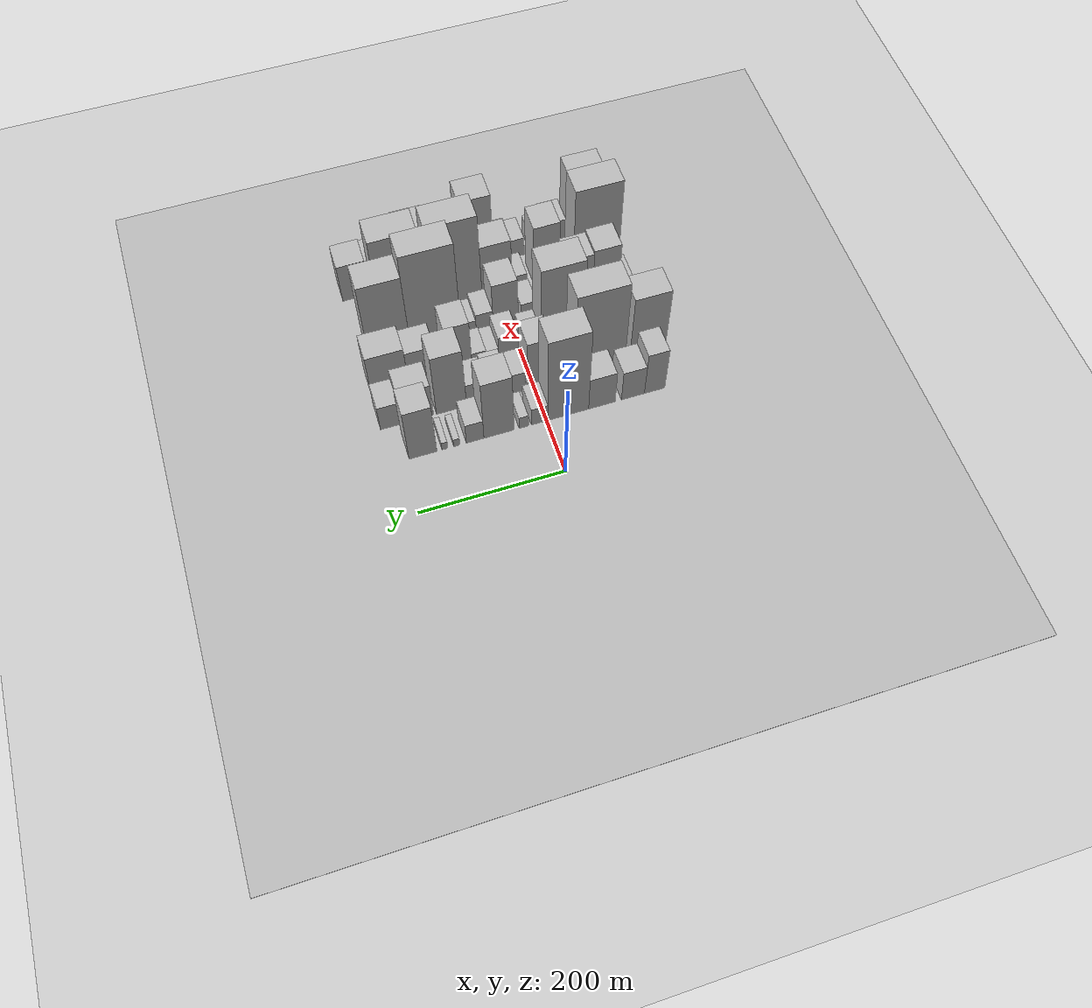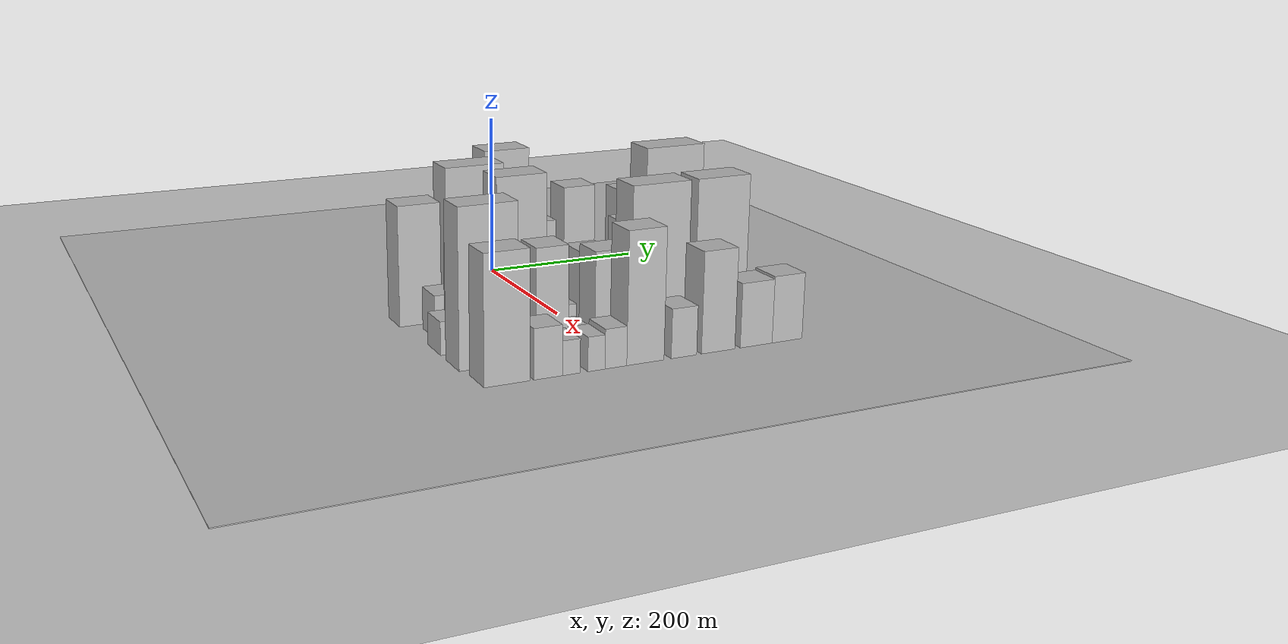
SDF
<sdf version="1.6">
 <world name="default">
  <include><name>ground_plane_1</name><uri>model://HANNAS_ground_plane</uri></include>
  <include>
   <name>ground_plane_2</name>
   <uri>model://HANNAS_ground_plane</uri>
   <pose>100 0 0  0 0 0</pose>
  </include>
  <model name="building_19">
   <static>1</static>
   <pose>100.0000 -153.6469 0 0.000000 0.000000 0.000000</pose>
   <link name="link">
    <pose>0 0 46.50 0 0 0</pose>
    <collision name="collision"><geometry><box><size>40.0000 29.4439 93.0000</size></box></geometry></collision>
    <visual name="visual">
     <cast_shadows>0</cast_shadows>
     <geometry><box><size>40.0000 29.4439 93.0000</size></box></geometry>
     <material>
      <script>
       <uri>model://HANNAS_wall/materials/scripts</uri>
       <uri>model://HANNAS_wall/materials/textures</uri>
       <name>vrc/HANNAS_wall</name>
      </script>
     </material>
    </visual>
   </link>
  </model>
  <model name="building_20">
   <static>1</static>
   <pose>100.0000 -122.4052 0 0.000000 0.000000 0.000000</pose>
   <link name="link">
    <pose>0 0 33.00 0 0 0</pose>
    <collision name="collision"><geometry><box><size>40.0000 33.0395 66.0000</size></box></geometry></collision>
    <visual name="visual">
     <cast_shadows>0</cast_shadows>
     <geometry><box><size>40.0000 33.0395 66.0000</size></box></geometry>
     <material>
      <script>
       <uri>model://HANNAS_wall/materials/scripts</uri>
       <uri>model://HANNAS_wall/materials/textures</uri>
       <name>vrc/HANNAS_wall</name>
      </script>
     </material>
    </visual>
   </link>
  </model>
  <model name="building_21">
   <static>1</static>
   <pose>100.0000 -77.9015 0 0.000000 0.000000 0.000000</pose>
   <link name="link">
    <pose>0 0 36.00 0 0 0</pose>
    <collision name="collision"><geometry><box><size>40.0000 37.9678 72.0000</size></box></geometry></collision>
    <visual name="visual">
     <cast_shadows>0</cast_shadows>
     <geometry><box><size>40.0000 37.9678 72.0000</size></box></geometry>
     <material>
      <script>
       <uri>model://HANNAS_wall/materials/scripts</uri>
       <uri>model://HANNAS_wall/materials/textures</uri>
       <name>vrc/HANNAS_wall</name>
      </script>
     </material>
    </visual>
   </link>
  </model>
  <model name="building_22">
   <static>1</static>
   <pose>100.0000 -30.0973 0 0.000000 0.000000 0.000000</pose>
   <link name="link">
    <pose>0 0 93.00 0 0 0</pose>
    <collision name="collision"><geometry><box><size>40.0000 57.6407 186.0000</size></box></geometry></collision>
    <visual name="visual">
     <cast_shadows>0</cast_shadows>
     <geometry><box><size>40.0000 57.6407 186.0000</size></box></geometry>
     <material>
      <script>
       <uri>model://HANNAS_wall/materials/scripts</uri>
       <uri>model://HANNAS_wall/materials/textures</uri>
       <name>vrc/HANNAS_wall</name>
      </script>
     </material>
    </visual>
   </link>
  </model>
  <model name="building_23">
   <static>1</static>
   <pose>100.0000 10.3468 0 0.000000 0.000000 0.000000</pose>
   <link name="link">
    <pose>0 0 19.50 0 0 0</pose>
    <collision name="collision"><geometry><box><size>40.0000 23.2474 39.0000</size></box></geometry></collision>
    <visual name="visual">
     <cast_shadows>0</cast_shadows>
     <geometry><box><size>40.0000 23.2474 39.0000</size></box></geometry>
     <material>
      <script>
       <uri>model://HANNAS_wall/materials/scripts</uri>
       <uri>model://HANNAS_wall/materials/textures</uri>
       <name>vrc/HANNAS_wall</name>
      </script>
     </material>
    </visual>
   </link>
  </model>
  <model name="building_24">
   <static>1</static>
   <pose>100.0000 32.5815 0 0.000000 0.000000 0.000000</pose>
   <link name="link">
    <pose>0 0 13.50 0 0 0</pose>
    <collision name="collision"><geometry><box><size>40.0000 13.2220 27.0000</size></box></geometry></collision>
    <visual name="visual">
     <cast_shadows>0</cast_shadows>
     <geometry><box><size>40.0000 13.2220 27.0000</size></box></geometry>
     <material>
      <script>
       <uri>model://HANNAS_wall/materials/scripts</uri>
       <uri>model://HANNAS_wall/materials/textures</uri>
       <name>vrc/HANNAS_wall</name>
      </script>
     </material>
    </visual>
   </link>
  </model>
  <model name="building_25">
   <static>1</static>
   <pose>100.0000 67.2017 0 0.000000 0.000000 0.000000</pose>
   <link name="link">
    <pose>0 0 66.00 0 0 0</pose>
    <collision name="collision"><geometry><box><size>40.0000 42.0183 132.0000</size></box></geometry></collision>
    <visual name="visual">
     <cast_shadows>0</cast_shadows>
     <geometry><box><size>40.0000 42.0183 132.0000</size></box></geometry>
     <material>
      <script>
       <uri>model://HANNAS_wall/materials/scripts</uri>
       <uri>model://HANNAS_wall/materials/textures</uri>
       <name>vrc/HANNAS_wall</name>
      </script>
     </material>
    </visual>
   </link>
  </model>
  <model name="building_26">
   <static>1</static>
   <pose>100.0000 100.3961 0 0.000000 0.000000 0.000000</pose>
   <link name="link">
    <pose>0 0 22.50 0 0 0</pose>
    <collision name="collision"><geometry><box><size>40.0000 24.3704 45.0000</size></box></geometry></collision>
    <visual name="visual">
     <cast_shadows>0</cast_shadows>
     <geometry><box><size>40.0000 24.3704 45.0000</size></box></geometry>
     <material>
      <script>
       <uri>model://HANNAS_wall/materials/scripts</uri>
       <uri>model://HANNAS_wall/materials/textures</uri>
       <name>vrc/HANNAS_wall</name>
      </script>
     </material>
    </visual>
   </link>
  </model>
  <model name="building_27">
   <static>1</static>
   <pose>100.0000 125.8456 0 0.000000 0.000000 0.000000</pose>
   <link name="link">
    <pose>0 0 9.00 0 0 0</pose>
    <collision name="collision"><geometry><box><size>40.0000 8.5287 18.0000</size></box></geometry></collision>
    <visual name="visual">
     <cast_shadows>0</cast_shadows>
     <geometry><box><size>40.0000 8.5287 18.0000</size></box></geometry>
     <material>
      <script>
       <uri>model://HANNAS_wall/materials/scripts</uri>
       <uri>model://HANNAS_wall/materials/textures</uri>
       <name>vrc/HANNAS_wall</name>
      </script>
     </material>
    </visual>
   </link>
  </model>
  <model name="building_28">
   <static>1</static>
   <pose>100.0000 142.0890 0 0.000000 0.000000 0.000000</pose>
   <link name="link">
    <pose>0 0 9.00 0 0 0</pose>
    <collision name="collision"><geometry><box><size>40.0000 7.9579 18.0000</size></box></geometry></collision>
    <visual name="visual">
     <cast_shadows>0</cast_shadows>
     <geometry><box><size>40.0000 7.9579 18.0000</size></box></geometry>
     <material>
      <script>
       <uri>model://HANNAS_wall/materials/scripts</uri>
       <uri>model://HANNAS_wall/materials/textures</uri>
       <name>vrc/HANNAS_wall</name>
      </script>
     </material>
    </visual>
   </link>
  </model>
  <model name="building_29">
   <static>1</static>
   <pose>100.0000 172.0794 0 0.000000 0.000000 0.000000</pose>
   <link name="link">
    <pose>0 0 57.00 0 0 0</pose>
    <collision name="collision"><geometry><box><size>40.0000 38.0229 114.0000</size></box></geometry></collision>
    <visual name="visual">
     <cast_shadows>0</cast_shadows>
     <geometry><box><size>40.0000 38.0229 114.0000</size></box></geometry>
     <material>
      <script>
       <uri>model://HANNAS_wall/materials/scripts</uri>
       <uri>model://HANNAS_wall/materials/textures</uri>
       <name>vrc/HANNAS_wall</name>
      </script>
     </material>
    </visual>
   </link>
  </model>
  <model name="building_71">
   <static>1</static>
   <pose>155.0000 -162.9015 0 0.000000 0.000000 0.000000</pose>
   <link name="link">
    <pose>0 0 72.00 0 0 0</pose>
    <collision name="collision"><geometry><box><size>40.0000 51.5961 144.0000</size></box></geometry></collision>
    <visual name="visual">
     <cast_shadows>0</cast_shadows>
     <geometry><box><size>40.0000 51.5961 144.0000</size></box></geometry>
     <material>
      <script>
       <uri>model://HANNAS_wall/materials/scripts</uri>
       <uri>model://HANNAS_wall/materials/textures</uri>
       <name>vrc/HANNAS_wall</name>
      </script>
     </material>
    </visual>
   </link>
  </model>
  <model name="building_72">
   <static>1</static>
   <pose>155.0000 -93.9543 0 0.000000 0.000000 0.000000</pose>
   <link name="link">
    <pose>0 0 91.50 0 0 0</pose>
    <collision name="collision"><geometry><box><size>40.0000 72.2982 183.0000</size></box></geometry></collision>
    <visual name="visual">
     <cast_shadows>0</cast_shadows>
     <geometry><box><size>40.0000 72.2982 183.0000</size></box></geometry>
     <material>
      <script>
       <uri>model://HANNAS_wall/materials/scripts</uri>
       <uri>model://HANNAS_wall/materials/textures</uri>
       <name>vrc/HANNAS_wall</name>
      </script>
     </material>
    </visual>
   </link>
  </model>
  <model name="building_73">
   <static>1</static>
   <pose>155.0000 -41.0346 0 0.000000 0.000000 0.000000</pose>
   <link name="link">
    <pose>0 0 33.00 0 0 0</pose>
    <collision name="collision"><geometry><box><size>40.0000 33.5412 66.0000</size></box></geometry></collision>
    <visual name="visual">
     <cast_shadows>0</cast_shadows>
     <geometry><box><size>40.0000 33.5412 66.0000</size></box></geometry>
     <material>
      <script>
       <uri>model://HANNAS_wall/materials/scripts</uri>
       <uri>model://HANNAS_wall/materials/textures</uri>
       <name>vrc/HANNAS_wall</name>
      </script>
     </material>
    </visual>
   </link>
  </model>
  <model name="building_74">
   <static>1</static>
   <pose>155.0000 -7.5074 0 0.000000 0.000000 0.000000</pose>
   <link name="link">
    <pose>0 0 54.00 0 0 0</pose>
    <collision name="collision"><geometry><box><size>40.0000 33.5132 108.0000</size></box></geometry></collision>
    <visual name="visual">
     <cast_shadows>0</cast_shadows>
     <geometry><box><size>40.0000 33.5132 108.0000</size></box></geometry>
     <material>
      <script>
       <uri>model://HANNAS_wall/materials/scripts</uri>
       <uri>model://HANNAS_wall/materials/textures</uri>
       <name>vrc/HANNAS_wall</name>
      </script>
     </material>
    </visual>
   </link>
  </model>
  <model name="building_75">
   <static>1</static>
   <pose>155.0000 25.5011 0 0.000000 0.000000 0.000000</pose>
   <link name="link">
    <pose>0 0 22.50 0 0 0</pose>
    <collision name="collision"><geometry><box><size>40.0000 26.5037 45.0000</size></box></geometry></collision>
    <visual name="visual">
     <cast_shadows>0</cast_shadows>
     <geometry><box><size>40.0000 26.5037 45.0000</size></box></geometry>
     <material>
      <script>
       <uri>model://HANNAS_wall/materials/scripts</uri>
       <uri>model://HANNAS_wall/materials/textures</uri>
       <name>vrc/HANNAS_wall</name>
      </script>
     </material>
    </visual>
   </link>
  </model>
  <model name="building_76">
   <static>1</static>
   <pose>155.0000 53.0796 0 0.000000 0.000000 0.000000</pose>
   <link name="link">
    <pose>0 0 28.50 0 0 0</pose>
    <collision name="collision"><geometry><box><size>40.0000 28.6533 57.0000</size></box></geometry></collision>
    <visual name="visual">
     <cast_shadows>0</cast_shadows>
     <geometry><box><size>40.0000 28.6533 57.0000</size></box></geometry>
     <material>
      <script>
       <uri>model://HANNAS_wall/materials/scripts</uri>
       <uri>model://HANNAS_wall/materials/textures</uri>
       <name>vrc/HANNAS_wall</name>
      </script>
     </material>
    </visual>
   </link>
  </model>
  <model name="building_77">
   <static>1</static>
   <pose>155.0000 81.7268 0 0.000000 0.000000 0.000000</pose>
   <link name="link">
    <pose>0 0 25.50 0 0 0</pose>
    <collision name="collision"><geometry><box><size>40.0000 28.6413 51.0000</size></box></geometry></collision>
    <visual name="visual">
     <cast_shadows>0</cast_shadows>
     <geometry><box><size>40.0000 28.6413 51.0000</size></box></geometry>
     <material>
      <script>
       <uri>model://HANNAS_wall/materials/scripts</uri>
       <uri>model://HANNAS_wall/materials/textures</uri>
       <name>vrc/HANNAS_wall</name>
      </script>
     </material>
    </visual>
   </link>
  </model>
  <model name="building_78">
   <static>1</static>
   <pose>155.0000 117.2070 0 0.000000 0.000000 0.000000</pose>
   <link name="link">
    <pose>0 0 67.50 0 0 0</pose>
    <collision name="collision"><geometry><box><size>40.0000 42.3190 135.0000</size></box></geometry></collision>
    <visual name="visual">
     <cast_shadows>0</cast_shadows>
     <geometry><box><size>40.0000 42.3190 135.0000</size></box></geometry>
     <material>
      <script>
       <uri>model://HANNAS_wall/materials/scripts</uri>
       <uri>model://HANNAS_wall/materials/textures</uri>
       <name>vrc/HANNAS_wall</name>
      </script>
     </material>
    </visual>
   </link>
  </model>
  <model name="building_79">
   <static>1</static>
   <pose>155.0000 164.8329 0 0.000000 0.000000 0.000000</pose>
   <link name="link">
    <pose>0 0 37.50 0 0 0</pose>
    <collision name="collision"><geometry><box><size>40.0000 44.9328 75.0000</size></box></geometry></collision>
    <visual name="visual">
     <cast_shadows>0</cast_shadows>
     <geometry><box><size>40.0000 44.9328 75.0000</size></box></geometry>
     <material>
      <script>
       <uri>model://HANNAS_wall/materials/scripts</uri>
       <uri>model://HANNAS_wall/materials/textures</uri>
       <name>vrc/HANNAS_wall</name>
      </script>
     </material>
    </visual>
   </link>
  </model>
  <model name="building_80">
   <static>1</static>
   <pose>155.0000 201.5827 0 0.000000 0.000000 0.000000</pose>
   <link name="link">
    <pose>0 0 27.00 0 0 0</pose>
    <collision name="collision"><geometry><box><size>40.0000 28.5667 54.0000</size></box></geometry></collision>
    <visual name="visual">
     <cast_shadows>0</cast_shadows>
     <geometry><box><size>40.0000 28.5667 54.0000</size></box></geometry>
     <material>
      <script>
       <uri>model://HANNAS_wall/materials/scripts</uri>
       <uri>model://HANNAS_wall/materials/textures</uri>
       <name>vrc/HANNAS_wall</name>
      </script>
     </material>
    </visual>
   </link>
  </model>
  <model name="building_123">
   <static>1</static>
   <pose>210.0000 -152.7098 0 0.000000 0.000000 0.000000</pose>
   <link name="link">
    <pose>0 0 25.50 0 0 0</pose>
    <collision name="collision"><geometry><box><size>40.0000 26.4671 51.0000</size></box></geometry></collision>
    <visual name="visual">
     <cast_shadows>0</cast_shadows>
     <geometry><box><size>40.0000 26.4671 51.0000</size></box></geometry>
     <material>
      <script>
       <uri>model://HANNAS_wall/materials/scripts</uri>
       <uri>model://HANNAS_wall/materials/textures</uri>
       <name>vrc/HANNAS_wall</name>
      </script>
     </material>
    </visual>
   </link>
  </model>
  <model name="building_124">
   <static>1</static>
   <pose>210.0000 -114.6695 0 0.000000 0.000000 0.000000</pose>
   <link name="link">
    <pose>0 0 43.50 0 0 0</pose>
    <collision name="collision"><geometry><box><size>40.0000 49.6135 87.0000</size></box></geometry></collision>
    <visual name="visual">
     <cast_shadows>0</cast_shadows>
     <geometry><box><size>40.0000 49.6135 87.0000</size></box></geometry>
     <material>
      <script>
       <uri>model://HANNAS_wall/materials/scripts</uri>
       <uri>model://HANNAS_wall/materials/textures</uri>
       <name>vrc/HANNAS_wall</name>
      </script>
     </material>
    </visual>
   </link>
  </model>
  <model name="building_125">
   <static>1</static>
   <pose>210.0000 -58.7451 0 0.000000 0.000000 0.000000</pose>
   <link name="link">
    <pose>0 0 90.00 0 0 0</pose>
    <collision name="collision"><geometry><box><size>40.0000 62.2352 180.0000</size></box></geometry></collision>
    <visual name="visual">
     <cast_shadows>0</cast_shadows>
     <geometry><box><size>40.0000 62.2352 180.0000</size></box></geometry>
     <material>
      <script>
       <uri>model://HANNAS_wall/materials/scripts</uri>
       <uri>model://HANNAS_wall/materials/textures</uri>
       <name>vrc/HANNAS_wall</name>
      </script>
     </material>
    </visual>
   </link>
  </model>
  <model name="building_126">
   <static>1</static>
   <pose>210.0000 -14.6817 0 0.000000 0.000000 0.000000</pose>
   <link name="link">
    <pose>0 0 22.50 0 0 0</pose>
    <collision name="collision"><geometry><box><size>40.0000 25.8915 45.0000</size></box></geometry></collision>
    <visual name="visual">
     <cast_shadows>0</cast_shadows>
     <geometry><box><size>40.0000 25.8915 45.0000</size></box></geometry>
     <material>
      <script>
       <uri>model://HANNAS_wall/materials/scripts</uri>
       <uri>model://HANNAS_wall/materials/textures</uri>
       <name>vrc/HANNAS_wall</name>
      </script>
     </material>
    </visual>
   </link>
  </model>
  <model name="building_127">
   <static>1</static>
   <pose>210.0000 19.5524 0 0.000000 0.000000 0.000000</pose>
   <link name="link">
    <pose>0 0 28.50 0 0 0</pose>
    <collision name="collision"><geometry><box><size>40.0000 28.5768 57.0000</size></box></geometry></collision>
    <visual name="visual">
     <cast_shadows>0</cast_shadows>
     <geometry><box><size>40.0000 28.5768 57.0000</size></box></geometry>
     <material>
      <script>
       <uri>model://HANNAS_wall/materials/scripts</uri>
       <uri>model://HANNAS_wall/materials/textures</uri>
       <name>vrc/HANNAS_wall</name>
      </script>
     </material>
    </visual>
   </link>
  </model>
  <model name="building_128">
   <static>1</static>
   <pose>210.0000 42.5405 0 0.000000 0.000000 0.000000</pose>
   <link name="link">
    <pose>0 0 16.50 0 0 0</pose>
    <collision name="collision"><geometry><box><size>40.0000 17.3992 33.0000</size></box></geometry></collision>
    <visual name="visual">
     <cast_shadows>0</cast_shadows>
     <geometry><box><size>40.0000 17.3992 33.0000</size></box></geometry>
     <material>
      <script>
       <uri>model://HANNAS_wall/materials/scripts</uri>
       <uri>model://HANNAS_wall/materials/textures</uri>
       <name>vrc/HANNAS_wall</name>
      </script>
     </material>
    </visual>
   </link>
  </model>
  <model name="building_129">
   <static>1</static>
   <pose>210.0000 61.5705 0 0.000000 0.000000 0.000000</pose>
   <link name="link">
    <pose>0 0 18.00 0 0 0</pose>
    <collision name="collision"><geometry><box><size>40.0000 20.6608 36.0000</size></box></geometry></collision>
    <visual name="visual">
     <cast_shadows>0</cast_shadows>
     <geometry><box><size>40.0000 20.6608 36.0000</size></box></geometry>
     <material>
      <script>
       <uri>model://HANNAS_wall/materials/scripts</uri>
       <uri>model://HANNAS_wall/materials/textures</uri>
       <name>vrc/HANNAS_wall</name>
      </script>
     </material>
    </visual>
   </link>
  </model>
  <model name="building_130">
   <static>1</static>
   <pose>210.0000 89.4102 0 0.000000 0.000000 0.000000</pose>
   <link name="link">
    <pose>0 0 55.50 0 0 0</pose>
    <collision name="collision"><geometry><box><size>40.0000 35.0187 111.0000</size></box></geometry></collision>
    <visual name="visual">
     <cast_shadows>0</cast_shadows>
     <geometry><box><size>40.0000 35.0187 111.0000</size></box></geometry>
     <material>
      <script>
       <uri>model://HANNAS_wall/materials/scripts</uri>
       <uri>model://HANNAS_wall/materials/textures</uri>
       <name>vrc/HANNAS_wall</name>
      </script>
     </material>
    </visual>
   </link>
  </model>
  <model name="building_131">
   <static>1</static>
   <pose>210.0000 112.4878 0 0.000000 0.000000 0.000000</pose>
   <link name="link">
    <pose>0 0 13.50 0 0 0</pose>
    <collision name="collision"><geometry><box><size>40.0000 11.1364 27.0000</size></box></geometry></collision>
    <visual name="visual">
     <cast_shadows>0</cast_shadows>
     <geometry><box><size>40.0000 11.1364 27.0000</size></box></geometry>
     <material>
      <script>
       <uri>model://HANNAS_wall/materials/scripts</uri>
       <uri>model://HANNAS_wall/materials/textures</uri>
       <name>vrc/HANNAS_wall</name>
      </script>
     </material>
    </visual>
   </link>
  </model>
  <model name="building_132">
   <static>1</static>
   <pose>210.0000 141.6310 0 0.000000 0.000000 0.000000</pose>
   <link name="link">
    <pose>0 0 39.00 0 0 0</pose>
    <collision name="collision"><geometry><box><size>40.0000 41.1501 78.0000</size></box></geometry></collision>
    <visual name="visual">
     <cast_shadows>0</cast_shadows>
     <geometry><box><size>40.0000 41.1501 78.0000</size></box></geometry>
     <material>
      <script>
       <uri>model://HANNAS_wall/materials/scripts</uri>
       <uri>model://HANNAS_wall/materials/textures</uri>
       <name>vrc/HANNAS_wall</name>
      </script>
     </material>
    </visual>
   </link>
  </model>
  <model name="building_133">
   <static>1</static>
   <pose>210.0000 188.3251 0 0.000000 0.000000 0.000000</pose>
   <link name="link">
    <pose>0 0 45.00 0 0 0</pose>
    <collision name="collision"><geometry><box><size>40.0000 52.2381 90.0000</size></box></geometry></collision>
    <visual name="visual">
     <cast_shadows>0</cast_shadows>
     <geometry><box><size>40.0000 52.2381 90.0000</size></box></geometry>
     <material>
      <script>
       <uri>model://HANNAS_wall/materials/scripts</uri>
       <uri>model://HANNAS_wall/materials/textures</uri>
       <name>vrc/HANNAS_wall</name>
      </script>
     </material>
    </visual>
   </link>
  </model>
  <model name="building_174">
   <static>1</static>
   <pose>265.0000 -169.7395 0 0.000000 0.000000 0.000000</pose>
   <link name="link">
    <pose>0 0 19.50 0 0 0</pose>
    <collision name="collision"><geometry><box><size>40.0000 19.9816 39.0000</size></box></geometry></collision>
    <visual name="visual">
     <cast_shadows>0</cast_shadows>
     <geometry><box><size>40.0000 19.9816 39.0000</size></box></geometry>
     <material>
      <script>
       <uri>model://HANNAS_wall/materials/scripts</uri>
       <uri>model://HANNAS_wall/materials/textures</uri>
       <name>vrc/HANNAS_wall</name>
      </script>
     </material>
    </visual>
   </link>
  </model>
  <model name="building_175">
   <static>1</static>
   <pose>265.0000 -140.2064 0 0.000000 0.000000 0.000000</pose>
   <link name="link">
    <pose>0 0 58.50 0 0 0</pose>
    <collision name="collision"><geometry><box><size>40.0000 39.0846 117.0000</size></box></geometry></collision>
    <visual name="visual">
     <cast_shadows>0</cast_shadows>
     <geometry><box><size>40.0000 39.0846 117.0000</size></box></geometry>
     <material>
      <script>
       <uri>model://HANNAS_wall/materials/scripts</uri>
       <uri>model://HANNAS_wall/materials/textures</uri>
       <name>vrc/HANNAS_wall</name>
      </script>
     </material>
    </visual>
   </link>
  </model>
  <model name="building_176">
   <static>1</static>
   <pose>265.0000 -102.0691 0 0.000000 0.000000 0.000000</pose>
   <link name="link">
    <pose>0 0 55.50 0 0 0</pose>
    <collision name="collision"><geometry><box><size>40.0000 37.1901 111.0000</size></box></geometry></collision>
    <visual name="visual">
     <cast_shadows>0</cast_shadows>
     <geometry><box><size>40.0000 37.1901 111.0000</size></box></geometry>
     <material>
      <script>
       <uri>model://HANNAS_wall/materials/scripts</uri>
       <uri>model://HANNAS_wall/materials/textures</uri>
       <name>vrc/HANNAS_wall</name>
      </script>
     </material>
    </visual>
   </link>
  </model>
  <model name="building_177">
   <static>1</static>
   <pose>265.0000 -65.9257 0 0.000000 0.000000 0.000000</pose>
   <link name="link">
    <pose>0 0 31.50 0 0 0</pose>
    <collision name="collision"><geometry><box><size>40.0000 35.0968 63.0000</size></box></geometry></collision>
    <visual name="visual">
     <cast_shadows>0</cast_shadows>
     <geometry><box><size>40.0000 35.0968 63.0000</size></box></geometry>
     <material>
      <script>
       <uri>model://HANNAS_wall/materials/scripts</uri>
       <uri>model://HANNAS_wall/materials/textures</uri>
       <name>vrc/HANNAS_wall</name>
      </script>
     </material>
    </visual>
   </link>
  </model>
  <model name="building_178">
   <static>1</static>
   <pose>265.0000 -26.9105 0 0.000000 0.000000 0.000000</pose>
   <link name="link">
    <pose>0 0 19.50 0 0 0</pose>
    <collision name="collision"><geometry><box><size>40.0000 22.9336 39.0000</size></box></geometry></collision>
    <visual name="visual">
     <cast_shadows>0</cast_shadows>
     <geometry><box><size>40.0000 22.9336 39.0000</size></box></geometry>
     <material>
      <script>
       <uri>model://HANNAS_wall/materials/scripts</uri>
       <uri>model://HANNAS_wall/materials/textures</uri>
       <name>vrc/HANNAS_wall</name>
      </script>
     </material>
    </visual>
   </link>
  </model>
  <model name="building_179">
   <static>1</static>
   <pose>265.0000 6.9068 0 0.000000 0.000000 0.000000</pose>
   <link name="link">
    <pose>0 0 49.50 0 0 0</pose>
    <collision name="collision"><geometry><box><size>40.0000 36.7010 99.0000</size></box></geometry></collision>
    <visual name="visual">
     <cast_shadows>0</cast_shadows>
     <geometry><box><size>40.0000 36.7010 99.0000</size></box></geometry>
     <material>
      <script>
       <uri>model://HANNAS_wall/materials/scripts</uri>
       <uri>model://HANNAS_wall/materials/textures</uri>
       <name>vrc/HANNAS_wall</name>
      </script>
     </material>
    </visual>
   </link>
  </model>
  <model name="building_180">
   <static>1</static>
   <pose>265.0000 37.5542 0 0.000000 0.000000 0.000000</pose>
   <link name="link">
    <pose>0 0 21.00 0 0 0</pose>
    <collision name="collision"><geometry><box><size>40.0000 24.5937 42.0000</size></box></geometry></collision>
    <visual name="visual">
     <cast_shadows>0</cast_shadows>
     <geometry><box><size>40.0000 24.5937 42.0000</size></box></geometry>
     <material>
      <script>
       <uri>model://HANNAS_wall/materials/scripts</uri>
       <uri>model://HANNAS_wall/materials/textures</uri>
       <name>vrc/HANNAS_wall</name>
      </script>
     </material>
    </visual>
   </link>
  </model>
  <model name="building_181">
   <static>1</static>
   <pose>265.0000 58.4927 0 0.000000 0.000000 0.000000</pose>
   <link name="link">
    <pose>0 0 15.00 0 0 0</pose>
    <collision name="collision"><geometry><box><size>40.0000 17.2833 30.0000</size></box></geometry></collision>
    <visual name="visual">
     <cast_shadows>0</cast_shadows>
     <geometry><box><size>40.0000 17.2833 30.0000</size></box></geometry>
     <material>
      <script>
       <uri>model://HANNAS_wall/materials/scripts</uri>
       <uri>model://HANNAS_wall/materials/textures</uri>
       <name>vrc/HANNAS_wall</name>
      </script>
     </material>
    </visual>
   </link>
  </model>
  <model name="building_182">
   <static>1</static>
   <pose>265.0000 107.6291 0 0.000000 0.000000 0.000000</pose>
   <link name="link">
    <pose>0 0 105.00 0 0 0</pose>
    <collision name="collision"><geometry><box><size>40.0000 72.9895 210.0000</size></box></geometry></collision>
    <visual name="visual">
     <cast_shadows>0</cast_shadows>
     <geometry><box><size>40.0000 72.9895 210.0000</size></box></geometry>
     <material>
      <script>
       <uri>model://HANNAS_wall/materials/scripts</uri>
       <uri>model://HANNAS_wall/materials/textures</uri>
       <name>vrc/HANNAS_wall</name>
      </script>
     </material>
    </visual>
   </link>
  </model>
  <model name="building_183">
   <static>1</static>
   <pose>265.0000 173.7679 0 0.000000 0.000000 0.000000</pose>
   <link name="link">
    <pose>0 0 84.00 0 0 0</pose>
    <collision name="collision"><geometry><box><size>40.0000 59.2882 168.0000</size></box></geometry></collision>
    <visual name="visual">
     <cast_shadows>0</cast_shadows>
     <geometry><box><size>40.0000 59.2882 168.0000</size></box></geometry>
     <material>
      <script>
       <uri>model://HANNAS_wall/materials/scripts</uri>
       <uri>model://HANNAS_wall/materials/textures</uri>
       <name>vrc/HANNAS_wall</name>
      </script>
     </material>
    </visual>
   </link>
  </model>
  <model name="building_224">
   <static>1</static>
   <pose>320.0000 -145.1535 0 0.000000 0.000000 0.000000</pose>
   <link name="link">
    <pose>0 0 90.00 0 0 0</pose>
    <collision name="collision"><geometry><box><size>40.0000 68.4389 180.0000</size></box></geometry></collision>
    <visual name="visual">
     <cast_shadows>0</cast_shadows>
     <geometry><box><size>40.0000 68.4389 180.0000</size></box></geometry>
     <material>
      <script>
       <uri>model://HANNAS_wall/materials/scripts</uri>
       <uri>model://HANNAS_wall/materials/textures</uri>
       <name>vrc/HANNAS_wall</name>
      </script>
     </material>
    </visual>
   </link>
  </model>
  <model name="building_225">
   <static>1</static>
   <pose>320.0000 -105.0051 0 0.000000 0.000000 0.000000</pose>
   <link name="link">
    <pose>0 0 13.50 0 0 0</pose>
    <collision name="collision"><geometry><box><size>40.0000 11.8579 27.0000</size></box></geometry></collision>
    <visual name="visual">
     <cast_shadows>0</cast_shadows>
     <geometry><box><size>40.0000 11.8579 27.0000</size></box></geometry>
     <material>
      <script>
       <uri>model://HANNAS_wall/materials/scripts</uri>
       <uri>model://HANNAS_wall/materials/textures</uri>
       <name>vrc/HANNAS_wall</name>
      </script>
     </material>
    </visual>
   </link>
  </model>
  <model name="building_226">
   <static>1</static>
   <pose>320.0000 -70.8626 0 0.000000 0.000000 0.000000</pose>
   <link name="link">
    <pose>0 0 63.00 0 0 0</pose>
    <collision name="collision"><geometry><box><size>40.0000 38.4270 126.0000</size></box></geometry></collision>
    <visual name="visual">
     <cast_shadows>0</cast_shadows>
     <geometry><box><size>40.0000 38.4270 126.0000</size></box></geometry>
     <material>
      <script>
       <uri>model://HANNAS_wall/materials/scripts</uri>
       <uri>model://HANNAS_wall/materials/textures</uri>
       <name>vrc/HANNAS_wall</name>
      </script>
     </material>
    </visual>
   </link>
  </model>
  <model name="building_227">
   <static>1</static>
   <pose>320.0000 -33.0319 0 0.000000 0.000000 0.000000</pose>
   <link name="link">
    <pose>0 0 15.00 0 0 0</pose>
    <collision name="collision"><geometry><box><size>40.0000 17.2343 30.0000</size></box></geometry></collision>
    <visual name="visual">
     <cast_shadows>0</cast_shadows>
     <geometry><box><size>40.0000 17.2343 30.0000</size></box></geometry>
     <material>
      <script>
       <uri>model://HANNAS_wall/materials/scripts</uri>
       <uri>model://HANNAS_wall/materials/textures</uri>
       <name>vrc/HANNAS_wall</name>
      </script>
     </material>
    </visual>
   </link>
  </model>
  <model name="building_228">
   <static>1</static>
   <pose>320.0000 2.8687 0 0.000000 0.000000 0.000000</pose>
   <link name="link">
    <pose>0 0 57.00 0 0 0</pose>
    <collision name="collision"><geometry><box><size>40.0000 44.5670 114.0000</size></box></geometry></collision>
    <visual name="visual">
     <cast_shadows>0</cast_shadows>
     <geometry><box><size>40.0000 44.5670 114.0000</size></box></geometry>
     <material>
      <script>
       <uri>model://HANNAS_wall/materials/scripts</uri>
       <uri>model://HANNAS_wall/materials/textures</uri>
       <name>vrc/HANNAS_wall</name>
      </script>
     </material>
    </visual>
   </link>
  </model>
  <model name="building_229">
   <static>1</static>
   <pose>320.0000 61.1413 0 0.000000 0.000000 0.000000</pose>
   <link name="link">
    <pose>0 0 91.50 0 0 0</pose>
    <collision name="collision"><geometry><box><size>40.0000 71.9783 183.0000</size></box></geometry></collision>
    <visual name="visual">
     <cast_shadows>0</cast_shadows>
     <geometry><box><size>40.0000 71.9783 183.0000</size></box></geometry>
     <material>
      <script>
       <uri>model://HANNAS_wall/materials/scripts</uri>
       <uri>model://HANNAS_wall/materials/textures</uri>
       <name>vrc/HANNAS_wall</name>
      </script>
     </material>
    </visual>
   </link>
  </model>
  <model name="building_230">
   <static>1</static>
   <pose>320.0000 139.4884 0 0.000000 0.000000 0.000000</pose>
   <link name="link">
    <pose>0 0 91.50 0 0 0</pose>
    <collision name="collision"><geometry><box><size>40.0000 66.7158 183.0000</size></box></geometry></collision>
    <visual name="visual">
     <cast_shadows>0</cast_shadows>
     <geometry><box><size>40.0000 66.7158 183.0000</size></box></geometry>
     <material>
      <script>
       <uri>model://HANNAS_wall/materials/scripts</uri>
       <uri>model://HANNAS_wall/materials/textures</uri>
       <name>vrc/HANNAS_wall</name>
      </script>
     </material>
    </visual>
   </link>
  </model>
  <model name="building_231">
   <static>1</static>
   <pose>320.0000 183.2553 0 0.000000 0.000000 0.000000</pose>
   <link name="link">
    <pose>0 0 19.50 0 0 0</pose>
    <collision name="collision"><geometry><box><size>40.0000 20.8181 39.0000</size></box></geometry></collision>
    <visual name="visual">
     <cast_shadows>0</cast_shadows>
     <geometry><box><size>40.0000 20.8181 39.0000</size></box></geometry>
     <material>
      <script>
       <uri>model://HANNAS_wall/materials/scripts</uri>
       <uri>model://HANNAS_wall/materials/textures</uri>
       <name>vrc/HANNAS_wall</name>
      </script>
     </material>
    </visual>
   </link>
  </model>
  <model name="building_272">
   <static>1</static>
   <pose>375.0000 -147.3381 0 0.000000 0.000000 0.000000</pose>
   <link name="link">
    <pose>0 0 72.00 0 0 0</pose>
    <collision name="collision"><geometry><box><size>40.0000 52.0263 144.0000</size></box></geometry></collision>
    <visual name="visual">
     <cast_shadows>0</cast_shadows>
     <geometry><box><size>40.0000 52.0263 144.0000</size></box></geometry>
     <material>
      <script>
       <uri>model://HANNAS_wall/materials/scripts</uri>
       <uri>model://HANNAS_wall/materials/textures</uri>
       <name>vrc/HANNAS_wall</name>
      </script>
     </material>
    </visual>
   </link>
  </model>
  <model name="building_273">
   <static>1</static>
   <pose>375.0000 -100.8179 0 0.000000 0.000000 0.000000</pose>
   <link name="link">
    <pose>0 0 28.50 0 0 0</pose>
    <collision name="collision"><geometry><box><size>40.0000 33.0141 57.0000</size></box></geometry></collision>
    <visual name="visual">
     <cast_shadows>0</cast_shadows>
     <geometry><box><size>40.0000 33.0141 57.0000</size></box></geometry>
     <material>
      <script>
       <uri>model://HANNAS_wall/materials/scripts</uri>
       <uri>model://HANNAS_wall/materials/textures</uri>
       <name>vrc/HANNAS_wall</name>
      </script>
     </material>
    </visual>
   </link>
  </model>
  <model name="building_274">
   <static>1</static>
   <pose>375.0000 -73.9425 0 0.000000 0.000000 0.000000</pose>
   <link name="link">
    <pose>0 0 19.50 0 0 0</pose>
    <collision name="collision"><geometry><box><size>40.0000 20.7368 39.0000</size></box></geometry></collision>
    <visual name="visual">
     <cast_shadows>0</cast_shadows>
     <geometry><box><size>40.0000 20.7368 39.0000</size></box></geometry>
     <material>
      <script>
       <uri>model://HANNAS_wall/materials/scripts</uri>
       <uri>model://HANNAS_wall/materials/textures</uri>
       <name>vrc/HANNAS_wall</name>
      </script>
     </material>
    </visual>
   </link>
  </model>
  <model name="building_275">
   <static>1</static>
   <pose>375.0000 -44.4052 0 0.000000 0.000000 0.000000</pose>
   <link name="link">
    <pose>0 0 19.50 0 0 0</pose>
    <collision name="collision"><geometry><box><size>40.0000 20.3377 39.0000</size></box></geometry></collision>
    <visual name="visual">
     <cast_shadows>0</cast_shadows>
     <geometry><box><size>40.0000 20.3377 39.0000</size></box></geometry>
     <material>
      <script>
       <uri>model://HANNAS_wall/materials/scripts</uri>
       <uri>model://HANNAS_wall/materials/textures</uri>
       <name>vrc/HANNAS_wall</name>
      </script>
     </material>
    </visual>
   </link>
  </model>
  <model name="building_276">
   <static>1</static>
   <pose>375.0000 -21.2244 0 0.000000 0.000000 0.000000</pose>
   <link name="link">
    <pose>0 0 22.50 0 0 0</pose>
    <collision name="collision"><geometry><box><size>40.0000 26.0240 45.0000</size></box></geometry></collision>
    <visual name="visual">
     <cast_shadows>0</cast_shadows>
     <geometry><box><size>40.0000 26.0240 45.0000</size></box></geometry>
     <material>
      <script>
       <uri>model://HANNAS_wall/materials/scripts</uri>
       <uri>model://HANNAS_wall/materials/textures</uri>
       <name>vrc/HANNAS_wall</name>
      </script>
     </material>
    </visual>
   </link>
  </model>
  <model name="building_277">
   <static>1</static>
   <pose>375.0000 14.4819 0 0.000000 0.000000 0.000000</pose>
   <link name="link">
    <pose>0 0 75.00 0 0 0</pose>
    <collision name="collision"><geometry><box><size>40.0000 45.3887 150.0000</size></box></geometry></collision>
    <visual name="visual">
     <cast_shadows>0</cast_shadows>
     <geometry><box><size>40.0000 45.3887 150.0000</size></box></geometry>
     <material>
      <script>
       <uri>model://HANNAS_wall/materials/scripts</uri>
       <uri>model://HANNAS_wall/materials/textures</uri>
       <name>vrc/HANNAS_wall</name>
      </script>
     </material>
    </visual>
   </link>
  </model>
  <model name="building_278">
   <static>1</static>
   <pose>375.0000 62.0414 0 0.000000 0.000000 0.000000</pose>
   <link name="link">
    <pose>0 0 28.50 0 0 0</pose>
    <collision name="collision"><geometry><box><size>40.0000 31.7304 57.0000</size></box></geometry></collision>
    <visual name="visual">
     <cast_shadows>0</cast_shadows>
     <geometry><box><size>40.0000 31.7304 57.0000</size></box></geometry>
     <material>
      <script>
       <uri>model://HANNAS_wall/materials/scripts</uri>
       <uri>model://HANNAS_wall/materials/textures</uri>
       <name>vrc/HANNAS_wall</name>
      </script>
     </material>
    </visual>
   </link>
  </model>
  <model name="building_279">
   <static>1</static>
   <pose>375.0000 105.1777 0 0.000000 0.000000 0.000000</pose>
   <link name="link">
    <pose>0 0 58.50 0 0 0</pose>
    <collision name="collision"><geometry><box><size>40.0000 42.5422 117.0000</size></box></geometry></collision>
    <visual name="visual">
     <cast_shadows>0</cast_shadows>
     <geometry><box><size>40.0000 42.5422 117.0000</size></box></geometry>
     <material>
      <script>
       <uri>model://HANNAS_wall/materials/scripts</uri>
       <uri>model://HANNAS_wall/materials/textures</uri>
       <name>vrc/HANNAS_wall</name>
      </script>
     </material>
    </visual>
   </link>
  </model>
  <model name="building_280">
   <static>1</static>
   <pose>375.0000 154.2229 0 0.000000 0.000000 0.000000</pose>
   <link name="link">
    <pose>0 0 37.50 0 0 0</pose>
    <collision name="collision"><geometry><box><size>40.0000 41.5481 75.0000</size></box></geometry></collision>
    <visual name="visual">
     <cast_shadows>0</cast_shadows>
     <geometry><box><size>40.0000 41.5481 75.0000</size></box></geometry>
     <material>
      <script>
       <uri>model://HANNAS_wall/materials/scripts</uri>
       <uri>model://HANNAS_wall/materials/textures</uri>
       <name>vrc/HANNAS_wall</name>
      </script>
     </material>
    </visual>
   </link>
  </model>
  <model name="building_281">
   <static>1</static>
   <pose>375.0000 194.8468 0 0.000000 0.000000 0.000000</pose>
   <link name="link">
    <pose>0 0 39.00 0 0 0</pose>
    <collision name="collision"><geometry><box><size>40.0000 39.6998 78.0000</size></box></geometry></collision>
    <visual name="visual">
     <cast_shadows>0</cast_shadows>
     <geometry><box><size>40.0000 39.6998 78.0000</size></box></geometry>
     <material>
      <script>
       <uri>model://HANNAS_wall/materials/scripts</uri>
       <uri>model://HANNAS_wall/materials/textures</uri>
       <name>vrc/HANNAS_wall</name>
      </script>
     </material>
    </visual>
   </link>
  </model>
 </world>
</sdf>
